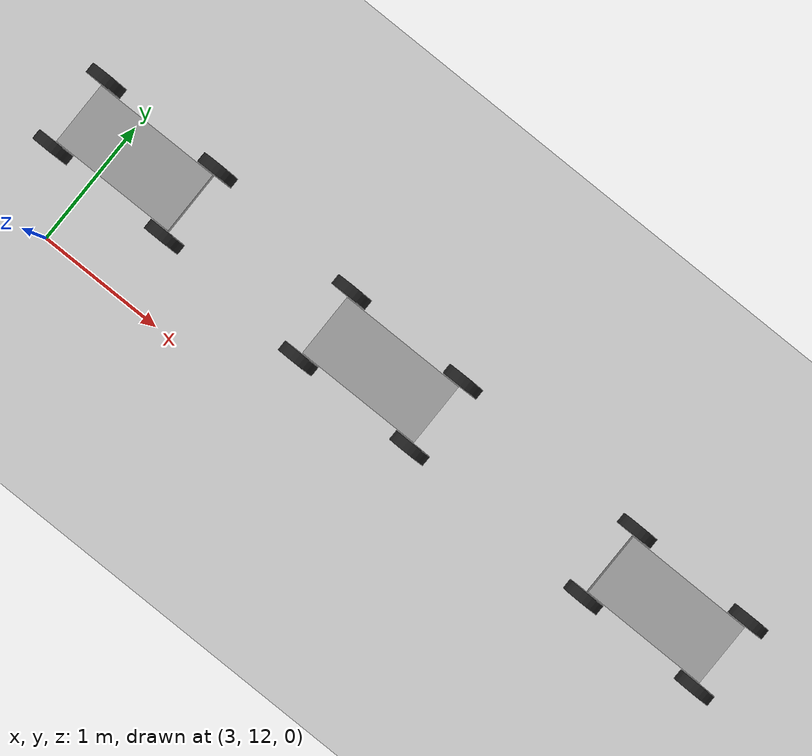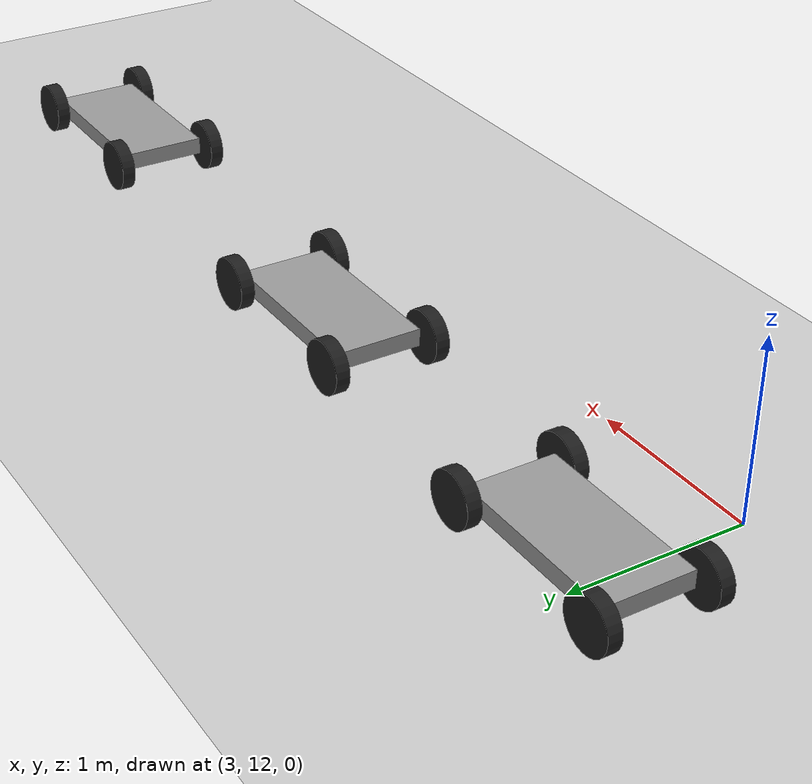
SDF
<sdf version="1.7">
 <world name="default">
  <model name="ground_plane">
   <static>1</static>
   <link name="link">
    <collision name="collision">
     <geometry><plane><normal>0 0 1</normal><size>100 100</size></plane></geometry>
     <surface><friction><ode><mu>100</mu><mu2>50</mu2></ode></friction></surface>
    </collision>
    <visual name="visual">
     <cast_shadows>0</cast_shadows>
     <geometry><plane><normal>0 0 1</normal><size>100 100</size></plane></geometry>
     <material>
      <script><uri>file://media/materials/scripts/gazebo.material</uri><name>Gazebo/Grey</name></script>
     </material>
    </visual>
   </link>
  </model>
  <model name="cart_front_steer">
   <link name="chassis">
    <pose>0 0 0.15 0 -0 0</pose>
    <inertial>
     <pose>0.1 0 0 0 -0 0</pose>
     <mass>10</mass>
     <inertia>
      <ixx>0.216667</ixx>
      <iyy>0.841667</iyy>
      <izz>1.04167</izz>
      <ixy>0</ixy>
      <ixz>0</ixz>
      <iyz>0</iyz>
     </inertia>
    </inertial>
    <collision name="collision"><geometry><box><size>1 0.5 0.1</size></box></geometry></collision>
    <visual name="visual">
     <geometry><box><size>1 0.5 0.1</size></box></geometry>
     <material>
      <script><uri>file://media/materials/scripts/gazebo.material</uri><name>Gazebo/Grey</name></script>
     </material>
    </visual>
   </link>
   <link name="wheel_front_left">
    <pose>0.5 0.298 0.15 -1.5708 -0.087266 0</pose>
    <inertial>
     <mass>0.5</mass>
     <inertia>
      <ixx>0.00307917</ixx>
      <iyy>0.00307917</iyy>
      <izz>0.005625</izz>
      <ixy>0</ixy>
      <ixz>0</ixz>
      <iyz>0</iyz>
     </inertia>
    </inertial>
    <collision name="collision">
     <geometry><cylinder><radius>0.15</radius><length>0.08</length></cylinder></geometry>
    </collision>
    <visual name="visual">
     <geometry><cylinder><radius>0.15</radius><length>0.08</length></cylinder></geometry>
     <material>
      <script><uri>file://media/materials/scripts/gazebo.material</uri><name>Gazebo/Black</name></script>
     </material>
    </visual>
   </link>
   <joint name="wheel_front_left_steer_spin" type="universal">
    <parent>chassis</parent>
    <child>wheel_front_left</child>
    <axis>
     <xyz>0 -1 0</xyz>
     <limit><lower>-0.610865</lower><upper>0.610865</upper></limit>
     <dynamics><spring_reference>0</spring_reference><spring_stiffness>0</spring_stiffness></dynamics>
    </axis>
    <axis2>
     <xyz>0 0 1</xyz>
     <limit><upper>1e+16</upper><lower>-1e+16</lower></limit>
     <dynamics><spring_reference>0</spring_reference><spring_stiffness>0</spring_stiffness></dynamics>
    </axis2>
   </joint>
   <link name="wheel_front_right">
    <pose>0.5 -0.298 0.15 -1.5708 -0.087266 0</pose>
    <inertial>
     <mass>0.5</mass>
     <inertia>
      <ixx>0.00307917</ixx>
      <iyy>0.00307917</iyy>
      <izz>0.005625</izz>
      <ixy>0</ixy>
      <ixz>0</ixz>
      <iyz>0</iyz>
     </inertia>
    </inertial>
    <collision name="collision">
     <geometry><cylinder><radius>0.15</radius><length>0.08</length></cylinder></geometry>
    </collision>
    <visual name="visual">
     <geometry><cylinder><radius>0.15</radius><length>0.08</length></cylinder></geometry>
     <material>
      <script><uri>file://media/materials/scripts/gazebo.material</uri><name>Gazebo/Black</name></script>
     </material>
    </visual>
   </link>
   <joint name="wheel_front_right_steer_spin" type="universal">
    <parent>chassis</parent>
    <child>wheel_front_right</child>
    <axis>
     <xyz>0 -1 0</xyz>
     <limit><lower>-0.610865</lower><upper>0.610865</upper></limit>
     <dynamics><spring_reference>0</spring_reference><spring_stiffness>0</spring_stiffness></dynamics>
    </axis>
    <axis2>
     <xyz>0 0 1</xyz>
     <limit><upper>1e+16</upper><lower>-1e+16</lower></limit>
     <dynamics><spring_reference>0</spring_reference><spring_stiffness>0</spring_stiffness></dynamics>
    </axis2>
   </joint>
   <link name="wheel_rear_left">
    <pose>-0.5 0.298 0.15 -1.5708 0 0</pose>
    <inertial>
     <mass>0.5</mass>
     <inertia>
      <ixx>0.00307917</ixx>
      <iyy>0.00307917</iyy>
      <izz>0.005625</izz>
      <ixy>0</ixy>
      <ixz>0</ixz>
      <iyz>0</iyz>
     </inertia>
    </inertial>
    <collision name="collision">
     <geometry><cylinder><radius>0.15</radius><length>0.08</length></cylinder></geometry>
    </collision>
    <visual name="visual">
     <geometry><cylinder><radius>0.15</radius><length>0.08</length></cylinder></geometry>
     <material>
      <script><uri>file://media/materials/scripts/gazebo.material</uri><name>Gazebo/Black</name></script>
     </material>
    </visual>
   </link>
   <joint name="wheel_rear_left_spin" type="revolute">
    <parent>chassis</parent>
    <child>wheel_rear_left</child>
    <axis>
     <xyz>0 0 1</xyz>
     <limit><lower>-1e+16</lower><upper>1e+16</upper></limit>
     <dynamics><spring_reference>0</spring_reference><spring_stiffness>0</spring_stiffness></dynamics>
    </axis>
   </joint>
   <link name="wheel_rear_right">
    <pose>-0.5 -0.298 0.15 -1.5708 0 0</pose>
    <inertial>
     <mass>0.5</mass>
     <inertia>
      <ixx>0.00307917</ixx>
      <iyy>0.00307917</iyy>
      <izz>0.005625</izz>
      <ixy>0</ixy>
      <ixz>0</ixz>
      <iyz>0</iyz>
     </inertia>
    </inertial>
    <collision name="collision">
     <geometry><cylinder><radius>0.15</radius><length>0.08</length></cylinder></geometry>
    </collision>
    <visual name="visual">
     <geometry><cylinder><radius>0.15</radius><length>0.08</length></cylinder></geometry>
     <material>
      <script><uri>file://media/materials/scripts/gazebo.material</uri><name>Gazebo/Black</name></script>
     </material>
    </visual>
   </link>
   <joint name="wheel_rear_right_spin" type="revolute">
    <parent>chassis</parent>
    <child>wheel_rear_right</child>
    <axis>
     <xyz>0 0 1</xyz>
     <limit><lower>-1e+16</lower><upper>1e+16</upper></limit>
     <dynamics><spring_reference>0</spring_reference><spring_stiffness>0</spring_stiffness></dynamics>
    </axis>
   </joint>
   <pose>3.16245 12.8329 -8e-06 2.5e-05 -1e-06 0.003063</pose>
  </model>
  <model name="cart_rigid_suspension">
   <link name="chassis">
    <pose>0 0 0.15 0 -0 0</pose>
    <inertial>
     <pose>0.1 0 0 0 -0 0</pose>
     <mass>10</mass>
     <inertia>
      <ixx>0.216667</ixx>
      <iyy>0.841667</iyy>
      <izz>1.04167</izz>
      <ixy>0</ixy>
      <ixz>0</ixz>
      <iyz>0</iyz>
     </inertia>
    </inertial>
    <collision name="collision"><geometry><box><size>1 0.5 0.1</size></box></geometry></collision>
    <visual name="visual">
     <geometry><box><size>1 0.5 0.1</size></box></geometry>
     <material>
      <script><uri>file://media/materials/scripts/gazebo.material</uri><name>Gazebo/Grey</name></script>
     </material>
    </visual>
   </link>
   <link name="wheel_front_left">
    <pose>0.5 0.298 0.15 -1.5708 0 0</pose>
    <inertial>
     <mass>0.5</mass>
     <inertia>
      <ixx>0.00307917</ixx>
      <iyy>0.00307917</iyy>
      <izz>0.005625</izz>
      <ixy>0</ixy>
      <ixz>0</ixz>
      <iyz>0</iyz>
     </inertia>
    </inertial>
    <collision name="collision">
     <geometry><cylinder><radius>0.15</radius><length>0.08</length></cylinder></geometry>
    </collision>
    <visual name="visual">
     <geometry><cylinder><radius>0.15</radius><length>0.08</length></cylinder></geometry>
     <material>
      <script><uri>file://media/materials/scripts/gazebo.material</uri><name>Gazebo/Black</name></script>
     </material>
    </visual>
   </link>
   <joint name="wheel_front_left_spin" type="revolute">
    <parent>chassis</parent>
    <child>wheel_front_left</child>
    <axis>
     <xyz>0 0 1</xyz>
     <limit><lower>-1e+16</lower><upper>1e+16</upper></limit>
     <dynamics><spring_reference>0</spring_reference><spring_stiffness>0</spring_stiffness></dynamics>
    </axis>
   </joint>
   <link name="wheel_front_right">
    <pose>0.5 -0.298 0.15 -1.5708 0 0</pose>
    <inertial>
     <mass>0.5</mass>
     <inertia>
      <ixx>0.00307917</ixx>
      <iyy>0.00307917</iyy>
      <izz>0.005625</izz>
      <ixy>0</ixy>
      <ixz>0</ixz>
      <iyz>0</iyz>
     </inertia>
    </inertial>
    <collision name="collision">
     <geometry><cylinder><radius>0.15</radius><length>0.08</length></cylinder></geometry>
    </collision>
    <visual name="visual">
     <geometry><cylinder><radius>0.15</radius><length>0.08</length></cylinder></geometry>
     <material>
      <script><uri>file://media/materials/scripts/gazebo.material</uri><name>Gazebo/Black</name></script>
     </material>
    </visual>
   </link>
   <joint name="wheel_front_right_spin" type="revolute">
    <parent>chassis</parent>
    <child>wheel_front_right</child>
    <axis>
     <xyz>0 0 1</xyz>
     <limit><lower>-1e+16</lower><upper>1e+16</upper></limit>
     <dynamics><spring_reference>0</spring_reference><spring_stiffness>0</spring_stiffness></dynamics>
    </axis>
   </joint>
   <link name="wheel_rear_left">
    <pose>-0.5 0.298 0.15 -1.5708 0 0</pose>
    <inertial>
     <mass>0.5</mass>
     <inertia>
      <ixx>0.00307917</ixx>
      <iyy>0.00307917</iyy>
      <izz>0.005625</izz>
      <ixy>0</ixy>
      <ixz>0</ixz>
      <iyz>0</iyz>
     </inertia>
    </inertial>
    <collision name="collision">
     <geometry><cylinder><radius>0.15</radius><length>0.08</length></cylinder></geometry>
    </collision>
    <visual name="visual">
     <geometry><cylinder><radius>0.15</radius><length>0.08</length></cylinder></geometry>
     <material>
      <script><uri>file://media/materials/scripts/gazebo.material</uri><name>Gazebo/Black</name></script>
     </material>
    </visual>
   </link>
   <joint name="wheel_rear_left_spin" type="revolute">
    <parent>chassis</parent>
    <child>wheel_rear_left</child>
    <axis>
     <xyz>0 0 1</xyz>
     <limit><lower>-1e+16</lower><upper>1e+16</upper></limit>
     <dynamics><spring_reference>0</spring_reference><spring_stiffness>0</spring_stiffness></dynamics>
    </axis>
   </joint>
   <link name="wheel_rear_right">
    <pose>-0.5 -0.298 0.15 -1.5708 0 0</pose>
    <inertial>
     <mass>0.5</mass>
     <inertia>
      <ixx>0.00307917</ixx>
      <iyy>0.00307917</iyy>
      <izz>0.005625</izz>
      <ixy>0</ixy>
      <ixz>0</ixz>
      <iyz>0</iyz>
     </inertia>
    </inertial>
    <collision name="collision">
     <geometry><cylinder><radius>0.15</radius><length>0.08</length></cylinder></geometry>
    </collision>
    <visual name="visual">
     <geometry><cylinder><radius>0.15</radius><length>0.08</length></cylinder></geometry>
     <material>
      <script><uri>file://media/materials/scripts/gazebo.material</uri><name>Gazebo/Black</name></script>
     </material>
    </visual>
   </link>
   <joint name="wheel_rear_right_spin" type="revolute">
    <parent>chassis</parent>
    <child>wheel_rear_right</child>
    <axis>
     <xyz>0 0 1</xyz>
     <limit><lower>-1e+16</lower><upper>1e+16</upper></limit>
     <dynamics><spring_reference>0</spring_reference><spring_stiffness>0</spring_stiffness></dynamics>
    </axis>
   </joint>
   <pose>5.42699 12.7625 0 0 -0 0.002091</pose>
  </model>
  <model name="cart_soft_suspension">
   <link name="chassis">
    <pose>0 0 0.15 0 -0 0</pose>
    <inertial>
     <pose>0.1 0 0 0 -0 0</pose>
     <mass>10</mass>
     <inertia>
      <ixx>0.216667</ixx>
      <iyy>0.841667</iyy>
      <izz>1.04167</izz>
      <ixy>0</ixy>
      <ixz>0</ixz>
      <iyz>0</iyz>
     </inertia>
    </inertial>
    <collision name="collision"><geometry><box><size>1 0.5 0.1</size></box></geometry></collision>
    <visual name="visual">
     <geometry><box><size>1 0.5 0.1</size></box></geometry>
     <material>
      <script><uri>file://media/materials/scripts/gazebo.material</uri><name>Gazebo/Grey</name></script>
     </material>
    </visual>
   </link>
   <link name="susp_front_right">
    <pose>0.5 -0.298 0.15 0 -0 0</pose>
    <inertial>
     <mass>0.5</mass>
     <inertia>
      <ixx>0.000208333</ixx>
      <iyy>0.000208333</iyy>
      <izz>0.000208333</izz>
      <ixy>0</ixy>
      <ixz>0</ixz>
      <iyz>0</iyz>
     </inertia>
    </inertial>
    <collision name="collision"><geometry><box><size>0.05 0.05 0.05</size></box></geometry></collision>
    <visual name="visual">
     <geometry><box><size>0.05 0.05 0.05</size></box></geometry>
     <material>
      <script><uri>file://media/materials/scripts/gazebo.material</uri><name>Gazebo/Black</name></script>
     </material>
    </visual>
   </link>
   <joint name="susp_front_right_prismatic" type="prismatic">
    <parent>chassis</parent>
    <child>susp_front_right</child>
    <axis>
     <xyz>0 0 -1</xyz>
     <limit><lower>-0.0375</lower><upper>0.0375</upper></limit>
     <dynamics>
      <damping>100</damping>
      <spring_stiffness>2500</spring_stiffness>
      <spring_reference>0.05</spring_reference>
     </dynamics>
    </axis>
    <physics>
     <ode><implicit_spring_damper>1</implicit_spring_damper><limit><cfm>0</cfm><erp>0.2</erp></limit></ode>
    </physics>
   </joint>
   <link name="wheel_front_right">
    <pose>0.5 -0.298 0.15 -1.5708 0 0</pose>
    <inertial>
     <mass>0.5</mass>
     <inertia>
      <ixx>0.00307917</ixx>
      <iyy>0.00307917</iyy>
      <izz>0.005625</izz>
      <ixy>0</ixy>
      <ixz>0</ixz>
      <iyz>0</iyz>
     </inertia>
    </inertial>
    <collision name="collision">
     <geometry><cylinder><radius>0.15</radius><length>0.08</length></cylinder></geometry>
    </collision>
    <visual name="visual">
     <geometry><cylinder><radius>0.15</radius><length>0.08</length></cylinder></geometry>
     <material>
      <script><uri>file://media/materials/scripts/gazebo.material</uri><name>Gazebo/Black</name></script>
     </material>
    </visual>
   </link>
   <joint name="wheel_front_right_spin" type="revolute">
    <parent>susp_front_right</parent>
    <child>wheel_front_right</child>
    <axis>
     <xyz>0 0 1</xyz>
     <limit><lower>-1e+16</lower><upper>1e+16</upper></limit>
     <dynamics><spring_reference>0</spring_reference><spring_stiffness>0</spring_stiffness></dynamics>
    </axis>
   </joint>
   <link name="susp_front_left">
    <pose>0.5 0.298 0.15 0 -0 0</pose>
    <inertial>
     <mass>0.5</mass>
     <inertia>
      <ixx>0.000208333</ixx>
      <iyy>0.000208333</iyy>
      <izz>0.000208333</izz>
      <ixy>0</ixy>
      <ixz>0</ixz>
      <iyz>0</iyz>
     </inertia>
    </inertial>
    <collision name="collision"><geometry><box><size>0.05 0.05 0.05</size></box></geometry></collision>
    <visual name="visual">
     <geometry><box><size>0.05 0.05 0.05</size></box></geometry>
     <material>
      <script><uri>file://media/materials/scripts/gazebo.material</uri><name>Gazebo/Black</name></script>
     </material>
    </visual>
   </link>
   <joint name="susp_front_left_prismatic" type="prismatic">
    <parent>chassis</parent>
    <child>susp_front_left</child>
    <axis>
     <xyz>0 0 -1</xyz>
     <limit><lower>-0.0375</lower><upper>0.0375</upper></limit>
     <dynamics>
      <damping>100</damping>
      <spring_stiffness>2500</spring_stiffness>
      <spring_reference>0.05</spring_reference>
     </dynamics>
    </axis>
    <physics>
     <ode><implicit_spring_damper>1</implicit_spring_damper><limit><cfm>0</cfm><erp>0.2</erp></limit></ode>
    </physics>
   </joint>
   <link name="wheel_front_left">
    <pose>0.5 0.298 0.15 -1.5708 0 0</pose>
    <inertial>
     <mass>0.5</mass>
     <inertia>
      <ixx>0.00307917</ixx>
      <iyy>0.00307917</iyy>
      <izz>0.005625</izz>
      <ixy>0</ixy>
      <ixz>0</ixz>
      <iyz>0</iyz>
     </inertia>
    </inertial>
    <collision name="collision">
     <geometry><cylinder><radius>0.15</radius><length>0.08</length></cylinder></geometry>
    </collision>
    <visual name="visual">
     <geometry><cylinder><radius>0.15</radius><length>0.08</length></cylinder></geometry>
     <material>
      <script><uri>file://media/materials/scripts/gazebo.material</uri><name>Gazebo/Black</name></script>
     </material>
    </visual>
   </link>
   <joint name="wheel_front_left_spin" type="revolute">
    <parent>susp_front_left</parent>
    <child>wheel_front_left</child>
    <axis>
     <xyz>0 0 1</xyz>
     <limit><lower>-1e+16</lower><upper>1e+16</upper></limit>
     <dynamics><spring_reference>0</spring_reference><spring_stiffness>0</spring_stiffness></dynamics>
    </axis>
   </joint>
   <link name="susp_rear_right">
    <pose>-0.5 -0.298 0.15 0 -0 0</pose>
    <inertial>
     <mass>0.5</mass>
     <inertia>
      <ixx>0.000208333</ixx>
      <iyy>0.000208333</iyy>
      <izz>0.000208333</izz>
      <ixy>0</ixy>
      <ixz>0</ixz>
      <iyz>0</iyz>
     </inertia>
    </inertial>
    <collision name="collision"><geometry><box><size>0.05 0.05 0.05</size></box></geometry></collision>
    <visual name="visual">
     <geometry><box><size>0.05 0.05 0.05</size></box></geometry>
     <material>
      <script><uri>file://media/materials/scripts/gazebo.material</uri><name>Gazebo/Black</name></script>
     </material>
    </visual>
   </link>
   <joint name="susp_rear_right_prismatic" type="prismatic">
    <parent>chassis</parent>
    <child>susp_rear_right</child>
    <axis>
     <xyz>0 0 -1</xyz>
     <limit><lower>-0.0375</lower><upper>0.0375</upper></limit>
     <dynamics>
      <damping>100</damping>
      <spring_stiffness>2500</spring_stiffness>
      <spring_reference>0.05</spring_reference>
     </dynamics>
    </axis>
    <physics>
     <ode><implicit_spring_damper>1</implicit_spring_damper><limit><cfm>0</cfm><erp>0.2</erp></limit></ode>
    </physics>
   </joint>
   <link name="wheel_rear_right">
    <pose>-0.5 -0.298 0.15 -1.5708 0 0</pose>
    <inertial>
     <mass>0.5</mass>
     <inertia>
      <ixx>0.00307917</ixx>
      <iyy>0.00307917</iyy>
      <izz>0.005625</izz>
      <ixy>0</ixy>
      <ixz>0</ixz>
      <iyz>0</iyz>
     </inertia>
    </inertial>
    <collision name="collision">
     <geometry><cylinder><radius>0.15</radius><length>0.08</length></cylinder></geometry>
    </collision>
    <visual name="visual">
     <geometry><cylinder><radius>0.15</radius><length>0.08</length></cylinder></geometry>
     <material>
      <script><uri>file://media/materials/scripts/gazebo.material</uri><name>Gazebo/Black</name></script>
     </material>
    </visual>
   </link>
   <joint name="wheel_rear_right_spin" type="revolute">
    <parent>susp_rear_right</parent>
    <child>wheel_rear_right</child>
    <axis>
     <xyz>0 0 1</xyz>
     <limit><lower>-1e+16</lower><upper>1e+16</upper></limit>
     <dynamics><spring_reference>0</spring_reference><spring_stiffness>0</spring_stiffness></dynamics>
    </axis>
   </joint>
   <link name="susp_rear_left">
    <pose>-0.5 0.298 0.15 0 -0 0</pose>
    <inertial>
     <mass>0.5</mass>
     <inertia>
      <ixx>0.000208333</ixx>
      <iyy>0.000208333</iyy>
      <izz>0.000208333</izz>
      <ixy>0</ixy>
      <ixz>0</ixz>
      <iyz>0</iyz>
     </inertia>
    </inertial>
    <collision name="collision"><geometry><box><size>0.05 0.05 0.05</size></box></geometry></collision>
    <visual name="visual">
     <geometry><box><size>0.05 0.05 0.05</size></box></geometry>
     <material>
      <script><uri>file://media/materials/scripts/gazebo.material</uri><name>Gazebo/Black</name></script>
     </material>
    </visual>
   </link>
   <joint name="susp_rear_left_prismatic" type="prismatic">
    <parent>chassis</parent>
    <child>susp_rear_left</child>
    <axis>
     <xyz>0 0 -1</xyz>
     <limit><lower>-0.0375</lower><upper>0.0375</upper></limit>
     <dynamics>
      <damping>100</damping>
      <spring_stiffness>2500</spring_stiffness>
      <spring_reference>0.05</spring_reference>
     </dynamics>
    </axis>
    <physics>
     <ode><implicit_spring_damper>1</implicit_spring_damper><limit><cfm>0</cfm><erp>0.2</erp></limit></ode>
    </physics>
   </joint>
   <link name="wheel_rear_left">
    <pose>-0.5 0.298 0.15 -1.5708 0 0</pose>
    <inertial>
     <mass>0.5</mass>
     <inertia>
      <ixx>0.00307917</ixx>
      <iyy>0.00307917</iyy>
      <izz>0.005625</izz>
      <ixy>0</ixy>
      <ixz>0</ixz>
      <iyz>0</iyz>
     </inertia>
    </inertial>
    <collision name="collision">
     <geometry><cylinder><radius>0.15</radius><length>0.08</length></cylinder></geometry>
    </collision>
    <visual name="visual">
     <geometry><cylinder><radius>0.15</radius><length>0.08</length></cylinder></geometry>
     <material>
      <script><uri>file://media/materials/scripts/gazebo.material</uri><name>Gazebo/Black</name></script>
     </material>
    </visual>
   </link>
   <joint name="wheel_rear_left_spin" type="revolute">
    <parent>susp_rear_left</parent>
    <child>wheel_rear_left</child>
    <axis>
     <xyz>0 0 1</xyz>
     <limit><lower>-1e+16</lower><upper>1e+16</upper></limit>
     <dynamics><spring_reference>0</spring_reference><spring_stiffness>0</spring_stiffness></dynamics>
    </axis>
   </joint>
   <pose>8.02533 12.7161 0.037446 9.4e-05 9.7e-05 -0.004085</pose>
  </model>
 </world>
</sdf>
